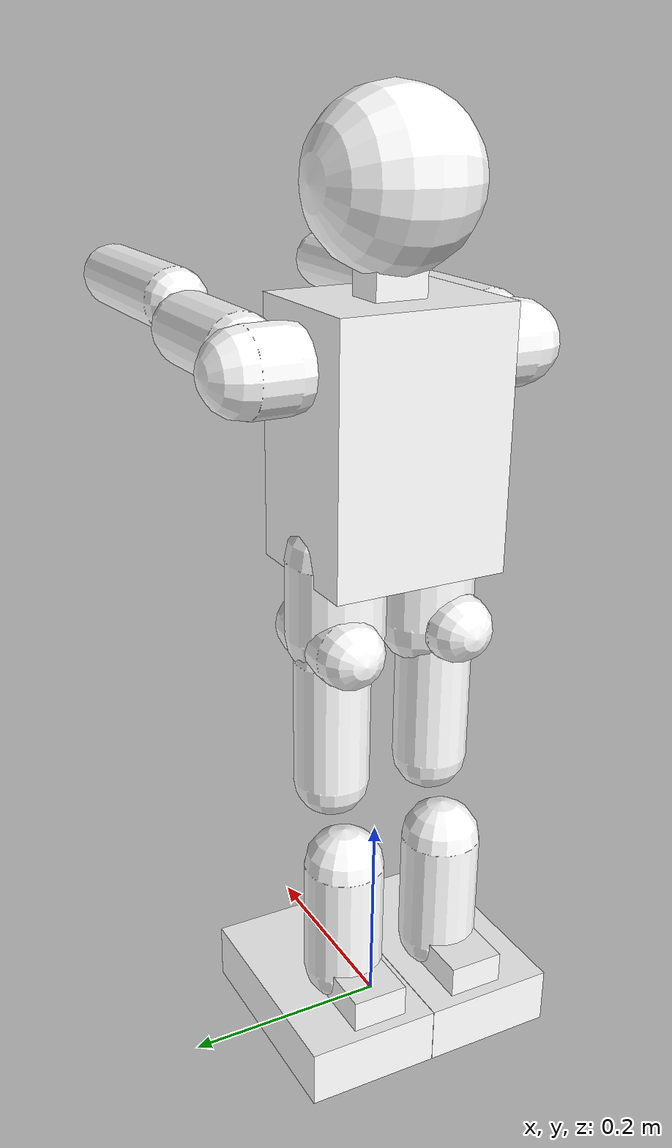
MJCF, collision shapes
<mujoco model="onshape">
  <compiler angle="radian" meshdir="NUgus/"/>
  <size njmax="500" nconmax="500"/>
  <asset>
    <mesh name="torso_visual" file="torso_visual.stl"/>
    <material name="self" rgba=".7 .5 .3 1"/>
    <mesh name="left_hip_yaw_visual" file="left_hip_yaw_visual.stl"/>
    <mesh name="left_hip_roll_visual" file="left_hip_roll_visual.stl"/>
    <mesh name="left_upper_leg_visual" file="left_upper_leg_visual.stl"/>
    <mesh name="left_lower_leg_visual" file="left_lower_leg_visual.stl"/>
    <mesh name="left_ankle_visual" file="left_ankle_visual.stl"/>
    <mesh name="left_foot_visual" file="left_foot_visual.stl"/>
    <mesh name="right_hip_yaw_visual" file="right_hip_yaw_visual.stl"/>
    <mesh name="right_hip_roll_visual" file="right_hip_roll_visual.stl"/>
    <mesh name="right_upper_leg_visual" file="right_upper_leg_visual.stl"/>
    <mesh name="right_lower_leg_visual" file="right_lower_leg_visual.stl"/>
    <mesh name="right_ankle_visual" file="right_ankle_visual.stl"/>
    <mesh name="right_foot_visual" file="right_foot_visual.stl"/>
    <mesh name="right_foot_base_visual" file="right_foot_base_visual.stl"/>
    <mesh name="neck_visual" file="neck_visual.stl"/>
    <mesh name="head_visual" file="head_visual.stl"/>
    <mesh name="right_camera_visual" file="right_camera_visual.stl"/>
    <mesh name="left_shoulder_visual" file="left_shoulder_visual.stl"/>
    <mesh name="left_upper_arm_visual" file="left_upper_arm_visual.stl"/>
    <mesh name="left_lower_arm_visual" file="left_lower_arm_visual.stl"/>
    <mesh name="right_shoulder_visual" file="right_shoulder_visual.stl"/>
    <mesh name="right_upper_arm_visual" file="right_upper_arm_visual.stl"/>
    <mesh name="right_lower_arm_visual" file="right_lower_arm_visual.stl"/>
  </asset>

  <default>
    <joint limited="true" solimplimit="0 0.99 0.01" stiffness="1" armature=".01" damping="1"/>
    <geom size="0.03 0 0" condim="1" friction="0.7 0.005 0.0001" solref="0.015 1" solimp="0.99 0.99 0.003"/>
    <general ctrllimited="true" ctrlrange="-1 1"/>
    <default class="humanoid">
      <default class="stiff_medium">
        <joint stiffness="10" damping="2"/>
      </default>
      <default class="stiff_medium_higher">
        <joint stiffness="50" damping="4"/>
      </default>
      <default class="stiff_high">
        <joint stiffness="200" damping="5"/>
      </default>
      <default class="sensor_site">
        <site type="sphere" size="0.01" group="4" rgba="1 0 0 .5"/>
      </default>
      <default class="contact">
        <geom condim="3" friction="1. 0.005 0.0001" solref="0.015 1" solimp="0.98 0.98 0.001" priority="1"/>
      </default>
    </default>
  </default>

  <worldbody>
    <light name="tracking_light" pos="0 0 3" dir="0 0 -1" mode="trackcom"/>
    <camera name="back" pos="0 3 1.4" xyaxes="-1 0 0 0 -1 2" mode="trackcom"/>
    <camera name="side" pos="-3 0 1.4" xyaxes="0 -1 0 1 0 2" mode="trackcom"/>
    <camera name="front_side" pos="-2 -2 0.5" xyaxes="0.5 -0.5 0 0.1 0.1 1"  mode="trackcom"/>
    <body name="root" childclass="humanoid" pos="0 0 0.5">
      <camera name="bodycam" pos="0 .3 .1" xyaxes="-1 0 0 0 1 0" fovy="80"/>
      <site name="root" size=".01" rgba="0.5 0.5 0.5 0"/>
        <geom type="mesh" contype="0" conaffinity="0" group="1" density="0" material="self" mesh="torso_visual"/>
        <geom size="0.0697546 0.0849914 0.120902" pos="-0.00200103 -1.04979e-05 0.108568" type="box" rgba="1 1 1 0.5"/>
      <body name="left_hip_yaw" pos="0 0.055 0" quat="1 0 0 0">
        <inertial pos="-0.0021828 -0.00894798 -0.0247563" quat="0.706738 0.705731 0.0325035 -0.0375176" mass="0.0594023" diaginertia="0.00011878 0.000103492 5.24089e-05"/>
        <joint name="j_left_hip_yaw" pos="0 0 0" axis="0 0 1" limited="true" range="-1 1"/>
        <geom type="mesh" contype="0" conaffinity="0" group="1" density="0" rgba="1 1 1 1" mesh="left_hip_yaw_visual"/>
        <geom size="0.0470128 0.03675" pos="0 -0.00723724 -0.03675" type="capsule" rgba="1 1 1 0.5"/>
        <body name="left_hip_roll" pos="0.0221332 0 -0.0545" quat="0.707105 0 0.707108 0">
          <inertial pos="0.015733 -0.000686158 -0.0217073" quat="0.70707 0.00800622 -0.00800603 0.707053" mass="0.395953" diaginertia="0.000375935 0.000314298 0.000127658"/>
          <joint name="j_left_hip_roll" pos="0 0 0" axis="0 0 1" limited="true" range="-1 1"/>
          <geom type="mesh" contype="0" conaffinity="0" group="1" density="0" rgba="1 1 1 1" mesh="left_hip_roll_visual"/>
          <geom size="0.0331382  0.038" pos="0.0211382 0.00135 -0.026825" type="capsule" rgba="1 1 1 0.5"/>
          <body name="left_upper_leg" pos="0 0 0" quat="0.707105 -0.707108 0 0">
            <inertial pos="0.144296 0.0401097 0.000258488" quat="0.48018 0.474915 0.52246 0.520498" mass="0.313357" diaginertia="0.00167304 0.00160068 0.000213115"/>
            <joint name="j_left_hip_pitch" pos="0 0 0" axis="0 0 1" limited="true" range="-1 1"/>
            <geom type="mesh" contype="0" conaffinity="0" group="1" density="0" rgba="1 1 1 1" mesh="left_upper_leg_visual"/>
            <geom size="0.0365 0.063135 " pos="0.103064 0.0303674 0" type="capsule" rgba="1 1 1 0.5" quat="1 0 1 0"/>
            <body name="left_lower_leg" pos="0.206046 0.0569501 0" quat="1 0 0 0">
              <inertial pos="0.1001 0.00388186 -1.61259e-08" quat="0.500001 0.500001 0.499999 0.499999" mass="0.0893011" diaginertia="0.000408951 0.0003363 9.01254e-05"/>
              <joint name="j_left_knee_pitch" pos="0 0 0" axis="0 0 1" limited="true" range="-1 1"/>
              <geom type="mesh" contype="0" conaffinity="0" group="1" density="0" rgba="1 1 1 1" mesh="left_lower_leg_visual"/>
              <geom size="0.039 0.0573" pos="0.100101 0.001 0" type="capsule" rgba="1 1 1 0.5" quat="1 0 1 0"/>
              <body name="left_ankle" pos="0.200203 0 0" quat="1 0 0 0">
                <inertial pos="-0.015733 0.0219762 0.000512596" quat="0.508721 0.491668 -0.491137 0.508184" mass="0.329993" diaginertia="0.000265803 0.000265762 0.000157721"/>
                <joint name="j_left_ankle_pitch" pos="0 0 0" axis="0 0 1" limited="true" range="-1 1"/>
                <geom type="mesh" contype="0" conaffinity="0" group="1" density="0" rgba="1 1 1 1" mesh="left_ankle_visual"/>
                <geom size="0.0331382 0.047194 0.02765" pos="-0.01805 0.027094 -0.00166756" type="box" rgba="1 1 1 0.5"/>
                <body name="left_foot" pos="0 0 0" quat="0.707105 0.707108 0 0">
                  <inertial pos="0.0248226 0.00798542 0.033284" quat="0.99979 -0.0089131 -9.26048e-05 -0.0184639" mass="0.245581" diaginertia="0.00134758 0.00108371 0.00033179"/>
                  <joint name="j_left_ankle_roll" pos="0 0 0" axis="0 0 1" limited="true" range="-1 1"/>
                  <site name="left_foot_touch" size=".012 0.005 0.055" pos="0.025 0.008752 0.13" quat="0 0 -1 -1" type="ellipsoid" class="sensor_site"/>
                  <geom type="mesh" contype="0" conaffinity="0" group="1" density="0" rgba="1 1 1 1" mesh="left_foot_visual"/>
                  <geom size="0.0284966 0.0657907 0.107911" pos="0.00950344 0.0109437 0.0211599" type="box" rgba="1 1 1 0.5"/>
                </body>
              </body>
            </body>
          </body>
        </body>
      </body>

      <body name="right_hip_yaw" pos="0 -0.055 0" quat="1 0 0 0">
        <inertial pos="-0.00218277 0.0089479 -0.0247564" quat="0.705733 0.706736 0.0375273 -0.0325114" mass="0.0594022" diaginertia="0.000118779 0.000103492 5.24082e-05"/>
        <joint name="j_right_hip_yaw" pos="0 0 0" axis="0 0 1" limited="true" range="-1 1"/>
        <geom type="mesh" contype="0" conaffinity="0" group="1" density="0" rgba="1 1 1 1" mesh="right_hip_yaw_visual"/>
        <geom size="0.0470128 0.03675" pos="0 0.00723724 -0.03675" type="capsule" rgba="1 1 1 0.5"/>
        <body name="right_hip_roll" pos="0.0221332 0 -0.0545" quat="0.707105 0 0.707108 0">
          <inertial pos="0.015733 -0.000232251 -0.0218286" quat="0.707049 0.00279235 -0.00279276 0.707153" mass="0.395953" diaginertia="0.000378041 0.000316367 0.000127621"/>
          <joint name="j_right_hip_roll" pos="0 0 0" axis="0 0 1" limited="true" range="-1 1"/>
          <geom type="mesh" contype="0" conaffinity="0" group="1" density="0" rgba="1 1 1 1" mesh="right_hip_roll_visual"/>
          <geom size="0.0331382  0.038" pos="0.01805 -0.00315 -0.02695" type="capsule" rgba="1 1 1 0.5"/>
          <body name="right_upper_leg" pos="0 0 0" quat="0.707105 -0.707108 0 0">
            <inertial pos="0.144343 0.0400917 -0.000278506" quat="0.47021 0.473824 0.526501 0.526488" mass="0.313809" diaginertia="0.00167983 0.00160132 0.000207139"/>
            <joint name="j_right_hip_pitch" pos="0 0 0" axis="0 0 1" limited="true" range="-1 1"/>
            <geom type="mesh" contype="0" conaffinity="0" group="1" density="0" rgba="1 1 1 1" mesh="right_upper_leg_visual"/>
            <geom size="0.0365 0.063135 " pos="0.103064 0.0303674 -1.86265e-09" type="capsule" rgba="1 1 1 0.5" quat="1 0 1 0"/>
            <body name="right_lower_leg" pos="0.206046 0.0569501 0" quat="1 0 0 0">
              <inertial pos="0.100103 0.00388186 1.61259e-08" quat="0.499999 0.499999 0.500001 0.500001" mass="0.0893011" diaginertia="0.000408951 0.0003363 9.01254e-05"/>
              <joint name="j_right_knee_pitch" pos="0 0 0" axis="0 0 1" limited="true" range="-1 1"/>
              <geom type="mesh" contype="0" conaffinity="0" group="1" density="0" rgba="1 1 1 1" mesh="right_lower_leg_visual"/>
              <geom size="0.039 0.0573" pos="0.100101 0.001 0" type="capsule" rgba="1 1 1 0.5" quat="1 0 1 0"/>
              <body name="right_ankle" pos="0.200203 0 0" quat="1 0 0 0">
                <inertial pos="-0.015733 0.0218226 0.000508968" quat="0.51022 0.492773 -0.489643 0.507051" mass="0.329993" diaginertia="0.00026369 0.000263648 0.000157719"/>
                <joint name="j_right_ankle_pitch" pos="0 0 0" axis="0 0 1" limited="false" range="-1 1"/>
                <geom type="mesh" contype="0" conaffinity="0" group="1" density="0" rgba="1 1 1 1" mesh="right_ankle_visual"/>
                <geom size="0.0328441 0.047044 0.02765" pos="-0.0177559 0.026944 -0.00166756" type="box" rgba="1 1 1 0.5"/>
                <body name="right_foot" pos="0 0 0" quat="0.707105 0.707108 0 0">
                  <inertial pos="0.024823 -0.00798676 0.0332808" quat="0.99979 0.0089119 -9.00788e-05 0.0184638" mass="0.245567" diaginertia="0.00134748 0.00108364 0.000331758"/>
                  <joint name="j_right_ankle_roll" pos="0 0 0" axis="0 0 1" limited="true" range="-1 1"/>
                  <site name="right_foot_touch" size=".012 0.005 0.055" pos="0.025 -0.008752 0.13" quat="0 0 -1 -1" type="ellipsoid" class="sensor_site"/>
                  <geom type="mesh" contype="0" conaffinity="0" group="1" density="0" rgba="1 1 1 1" mesh="right_foot_visual"/>
                  <geom size="0.0284933 0.0657897 0.107911" pos="0.00950672 -0.0109447 0.0211599" type="box" rgba="1 1 1 0.5"/>
                  <geom pos="0.038 0 0" quat="0.707105 0 -0.707108 0" type="mesh" contype="0" conaffinity="0" group="1" density="0" rgba="0.615686 0.811765 0.929412 1" mesh="right_foot_base_visual"/>
                  <geom size="5e-06 5.08174e-06 5e-06" pos="0.037995 0 -1.8366e-11" quat="0.707105 0 -0.707108 0" type="box" rgba="1 1 1 0.5"/>
                </body>
              </body>
            </body>
          </body>
        </body>
      </body>
      <body name="neck" pos="-0.008 0 0.20825" quat="1.32679e-06 0 0 -1">
        <inertial pos="-0.000244686 -0.000118134 0.0329091" quat="0.998443 0.0557737 1.07166e-07 -1.91845e-06" mass="0.165011" diaginertia="6.78379e-05 5.68579e-05 3.82813e-05"/>
        <joint name="j_neck_yaw" pos="-0.008 0 0.20825" axis="0 0 1" limited="true" range="-1 1"/>
        <geom type="mesh" contype="0" conaffinity="0" group="1" density="0" rgba="1 1 1 1" mesh="neck_visual"/>
        <geom size="0.0201 0.025 0.0314176" pos="-0.000244711 -0.00275529 0.0306824" type="box" rgba="1 1 1 0.5"/>
        <body name="head" pos="-0.00024471 -0.000255294 0.0481" quat="0.499998 0.5 0.5 -0.500002">
          <camera name="Legocentric" pos="-0.065 -0.06 0.035" xyaxes="-1 0 0 0 1 0" fovy="80"/>
          <geom name="Lhead_camera_geom" type="sphere" size="0.015" pos="-0.065 -0.06 0.035" rgba="1 0 0 1" group="4"/>
          <camera name="Regocentric" pos="-0.065 -0.06 -0.035" xyaxes="-1 0 0 0 1 0" fovy="80"/>
          <geom name="Rhead_camera_geom" type="sphere" size="0.015" pos="-0.065 -0.06 -0.035" rgba="1 0 0 1" group="4"/>
          <inertial pos="-0.0665563 -0.0103216 -0.000100617" quat="0.999969 -0.000336797 -0.00449046 0.00648687" mass="0.473503" diaginertia="0.00196866 0.00145321 0.00107438"/>
          <joint name="j_head_pitch" pos="0 0 0" axis="0 0 1" limited="true" range="-1 1"/>
          <geom type="mesh" contype="0" conaffinity="0" group="1" density="0" rgba="1 1 1 1" mesh="head_visual"/>
          <geom size="0.0778217" pos="-0.0659288 -0.00433207 -0.000205018" type="sphere" rgba="1 1 1 0.5"/>
          <geom pos="-0.0648803 -0.0699522 -0.034205" quat="0.508649 0.508651 -0.491199 -0.491197" type="mesh" contype="0" conaffinity="0" group="1" density="0" rgba="0.615686 0.811765 0.929412 1" mesh="right_camera_visual"/>
          <geom size="5e-06 5.08174e-06 5e-06" pos="-0.0648853 -0.0699524 -0.034205" quat="0.508649 0.508651 -0.491199 -0.491197" type="box" rgba="0.615686 0.811765 0.929412 0.2"/>
        </body>
      </body>
      <body name="left_shoulder" pos="0 0.077 0.17725" quat="0.499998 -0.5 0.5 0.500002">
        <inertial pos="-3.61374e-05 -0.00254925 0.0287427" quat="0.618495 0.346197 0.615355 0.344891" mass="0.0845502" diaginertia="9.98768e-05 9.09162e-05 7.30289e-05"/>
        <joint name="j_left_shoulder_pitch" pos="0 0.0106 0.1616" axis="0 0 1" limited="true" range="-1 1"/>
        <geom type="mesh" contype="0" conaffinity="0" group="1" density="0" rgba="1 1 1 1" mesh="left_shoulder_visual"/>
        <geom size="0.04 0.018721" pos="0 -0.000721047 0.0396866" type="capsule" rgba="1 1 1 0.5"/>
        <body name="left_upper_arm" pos="0 -0.0100012 0.0479124" quat="0.499998 0.5 -0.500002 -0.5">
          <inertial pos="0.045902 0.000372495 9.27204e-06" quat="0.346504 0.576301 -0.375287 0.637943" mass="0.29923" diaginertia="0.00098868 0.000637586 0.000573833"/>
          <joint name="j_left_shoulder_roll" pos="0 0 0" axis="0 0 1" limited="true" range="-1 1"/>
          <geom type="mesh" contype="0" conaffinity="0" group="1" density="0" rgba="1 1 1 1" mesh="left_upper_arm_visual"/>
          <geom size="0.0347976 0.0562" pos="0.0730323 -1.39214e-05 0.0106963" type="capsule" rgba="1 1 1 0.5" quat="1 0 1 0"/>
          <body name="left_lower_arm" pos="0.1575 -5.57465e-05 0.02695" quat="0.499998 -0.5 0.5 0.500002">
            <inertial pos="-0.000605553 -0.0509966 6.9181e-05" quat="0.568214 0.433479 -0.53189 0.454226" mass="0.287325" diaginertia="0.00115275 0.000789823 0.000530221"/>
            <joint name="j_left_elbow_pitch" pos="0 0 0" axis="0 0 1" limited="true" range="-1 1"/>
            <geom type="mesh" contype="0" conaffinity="0" group="1" density="0" rgba="1 1 1 1" mesh="left_lower_arm_visual"/>
            <geom size="0.031286 0.0845" pos="-0.00247871 -0.0956493 -0.00252151" type="capsule" rgba="1 1 1 0.5" quat="1 1 0 0"/>
          </body>
        </body>
      </body>
      <body name="right_shoulder" pos="0 -0.077 0.17725" quat="0.499998 -0.5 0.5 0.500002">
        <inertial pos="-3.46247e-05 -0.00254925 -0.0287427" quat="0.346201 0.618498 0.344878 0.615357" mass="0.0845501" diaginertia="9.98771e-05 9.09162e-05 7.3029e-05"/>
        <joint name="j_right_shoulder_pitch" pos="0 -0.0106 0.1616" axis="0 0 1" limited="true" range="-1 1"/>
        <geom type="mesh" contype="0" conaffinity="0" group="1" density="0" rgba="1 1 1 1" mesh="right_shoulder_visual"/>
        <geom size="0.04 0.0187336" pos="0 -0.000733595 -0.0396809" type="capsule" rgba="1 1 1 0.5"/>
        <body name="right_upper_arm" pos="0 -0.0100012 -0.0479124" quat="0.499998 0.5 -0.500002 -0.5">
          <inertial pos="0.0458986 -0.000371241 0.000118834" quat="0.327762 0.587042 -0.375964 0.637656" mass="0.299218" diaginertia="0.000988599 0.000640993 0.000570263"/>
          <joint name="j_right_shoulder_roll" pos="0 0 0" axis="0 0 1" limited="true" range="-1 1"/>
          <geom type="mesh" contype="0" conaffinity="0" group="1" density="0" rgba="1 1 1 1" mesh="right_upper_arm_visual"/>
          <geom size="0.0347976 0.0562" pos="0.0730282 1.39214e-05 0.0106963" type="capsule" rgba="1 1 1 0.5" quat="1 0 1 0"/>
          <body name="right_lower_arm" pos="0.1575 5.57465e-05 0.02695" quat="0.499998 -0.5 0.5 0.500002">
            <inertial pos="-0.00060488 -0.0510002 -6.85101e-05" quat="0.456626 0.549865 -0.476171 0.512252" mass="0.28735" diaginertia="0.00115298 0.000782489 0.000537795"/>
            <joint name="j_right_elbow_pitch" pos="0 0 0" axis="0 0 1" limited="true" range="-1 1"/>
            <geom type="mesh" contype="0" conaffinity="0" group="1" density="0" rgba="1 1 1 1" mesh="right_lower_arm_visual"/>
            <geom size="0.031286 0.0845" pos="-0.00247871 -0.0956591 0.0025391" type="capsule" rgba="1 1 1 0.5" quat="1 1 0 0"/>
          </body>
        </body>
      </body>
    </body>
  </worldbody>

    <contact>
        <exclude body1="right_hip_yaw" body2="right_hip_roll"/>
        <exclude body1="right_hip_yaw" body2="right_upper_leg"/>
        <exclude body1="right_hip_roll" body2="right_upper_leg"/>
        <exclude body1="root" body2="right_upper_leg"/>
        <exclude body1="left_hip_yaw" body2="left_hip_roll"/>
        <exclude body1="left_hip_yaw" body2="left_upper_leg"/>
        <exclude body1="left_hip_roll" body2="left_upper_leg"/>
        <exclude body1="root" body2="left_upper_leg"/>
    </contact>

    <actuator>
        <!-- Physical limits of the actuator. -->
        <!-- Values taken from https://www.universal-robots.com/articles/ur-articles/max-joint-torques/ -->
        <motor name='j_left_hip_yaw' joint='j_left_hip_yaw' gear="20"/>
        <motor name='j_left_hip_roll' joint='j_left_hip_roll' gear="20"/>
        <motor name='j_left_hip_pitch' joint='j_left_hip_pitch' gear="20"/>
        <motor name='j_left_knee_pitch' joint='j_left_knee_pitch' gear="20"/>
        <motor name='j_left_ankle_pitch' joint='j_left_ankle_pitch' gear="20"/>
        <motor name='j_left_ankle_roll' joint='j_left_ankle_roll' gear="20"/>
        <motor name='j_right_hip_yaw' joint='j_right_hip_yaw' gear="20"/>

        <motor name='j_right_hip_roll' joint='j_right_hip_roll' gear="20"/>
        <motor name='j_right_hip_pitch' joint='j_right_hip_pitch' gear="20"/>
        <motor name='j_right_knee_pitch' joint='j_right_knee_pitch' gear="20"/>
        <motor name='j_right_ankle_pitch' joint='j_right_ankle_pitch' gear="20"/>
        <motor name='j_right_ankle_roll' joint='j_right_ankle_roll' gear="20"/>

        <motor name='j_neck_yaw' joint='j_neck_yaw' gear="20"/>
        <motor name='j_head_pitch' joint='j_head_pitch' gear="20"/>

        <motor name='j_left_shoulder_pitch' joint='j_left_shoulder_pitch' gear="20"/>
        <motor name='j_left_shoulder_roll' joint='j_left_shoulder_roll' gear="20"/>
        <motor name='j_left_elbow_pitch' joint='j_left_elbow_pitch' gear="20"/>
        <motor name='j_right_shoulder_pitch' joint='j_right_shoulder_pitch' gear="20"/>
        <motor name='j_right_shoulder_roll' joint='j_right_shoulder_roll' gear="20"/>
        <motor name='j_right_elbow_pitch' joint='j_right_elbow_pitch' gear="20"/>
    </actuator>

    <sensor>
      <velocimeter name="sensor_root_veloc" site="root"/>
      <gyro name="sensor_root_gyro" site="root"/>
      <accelerometer name="sensor_root_accel" site="root"/>
      <touch name="sensor_touch_ltoes" site="left_foot_touch"/>
      <touch name="sensor_touch_rtoes" site="right_foot_touch"/>
    </sensor>
</mujoco>
